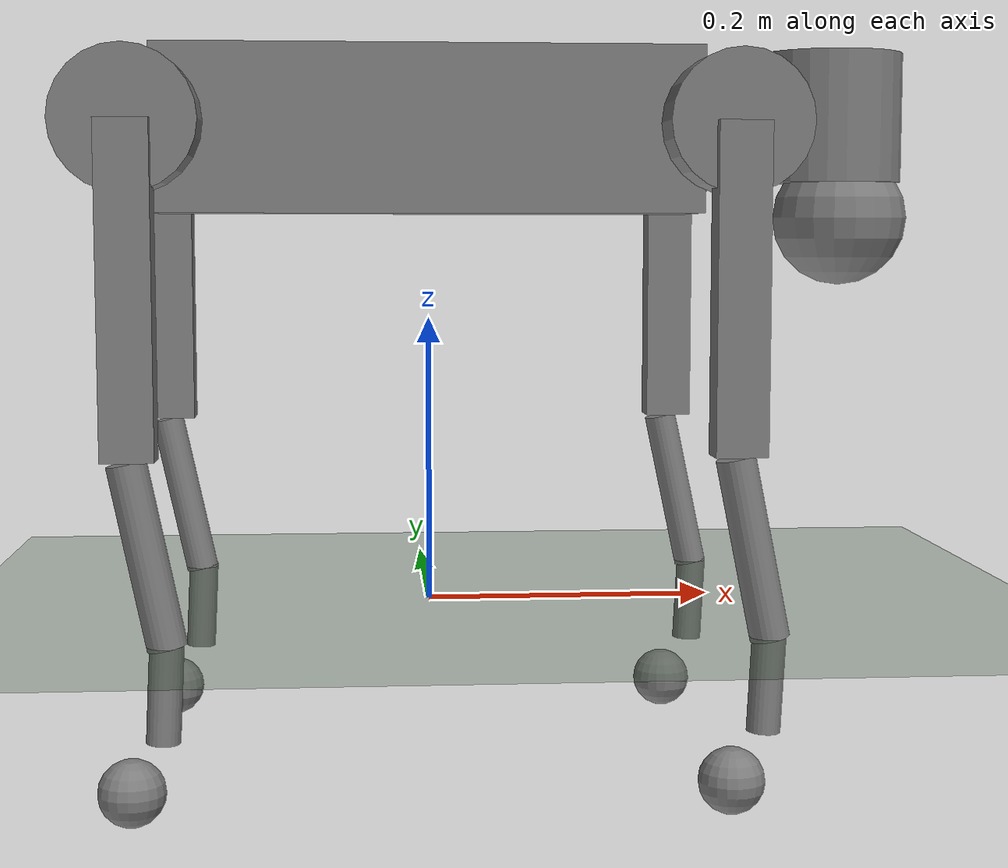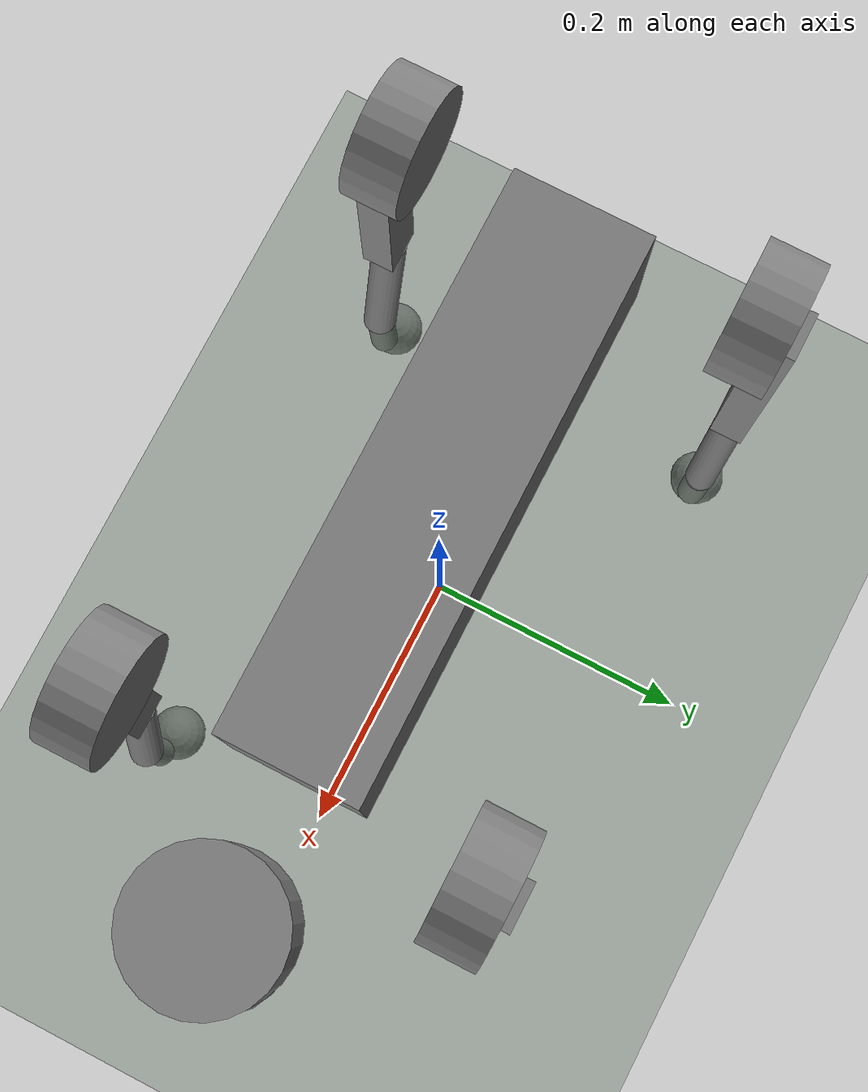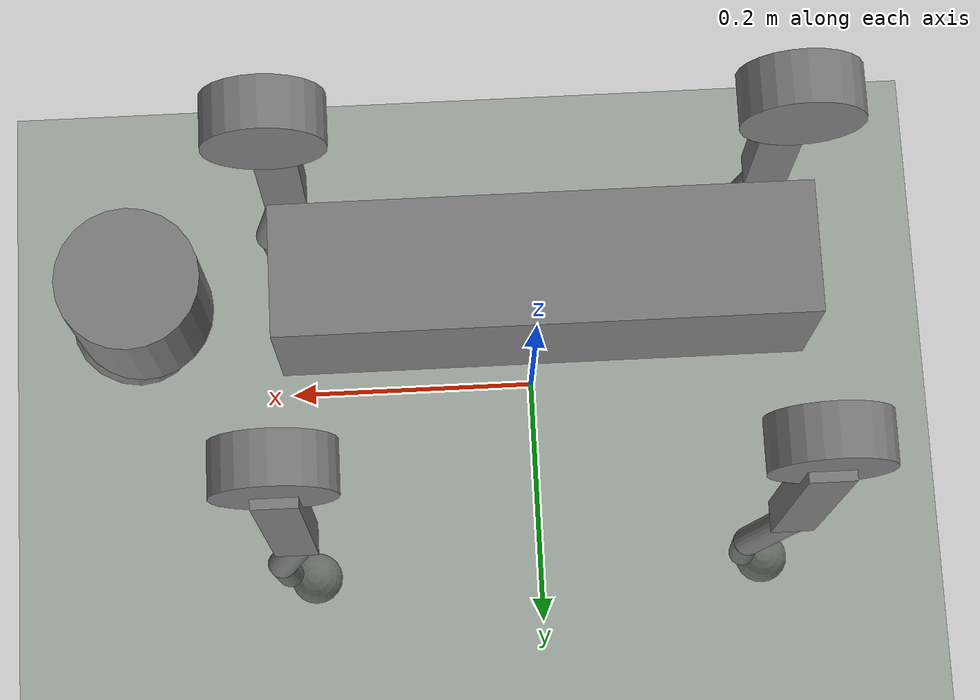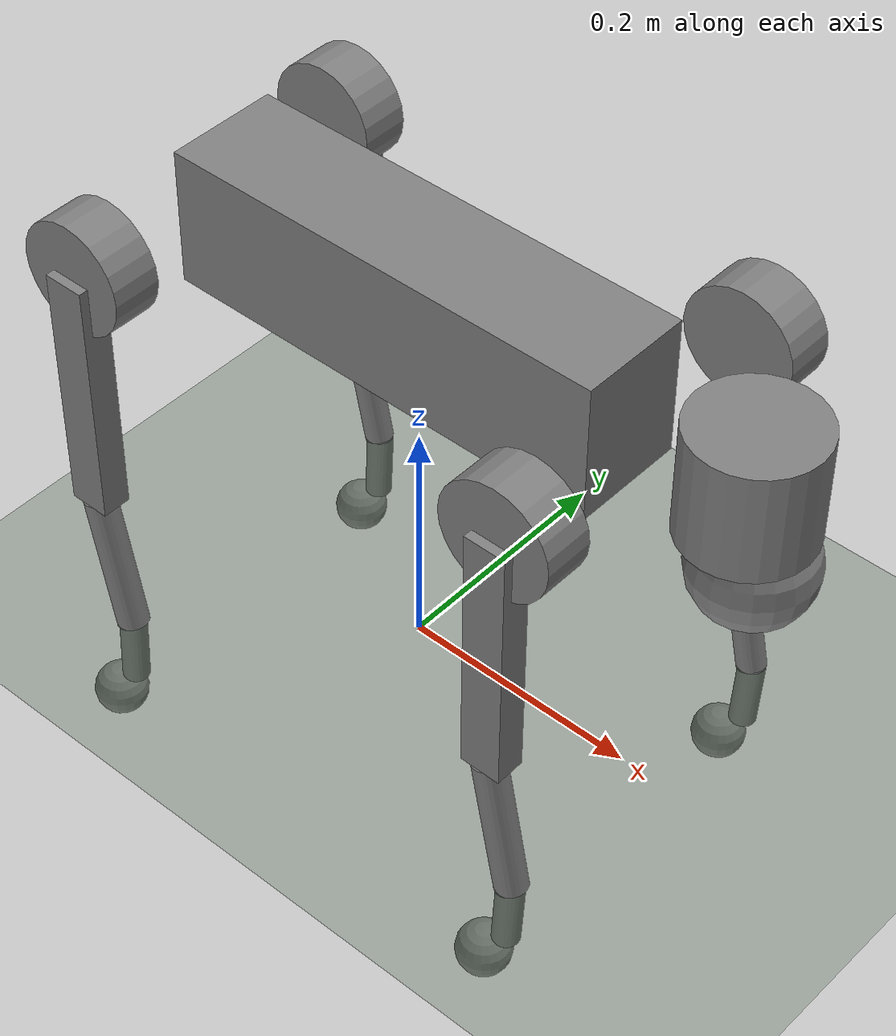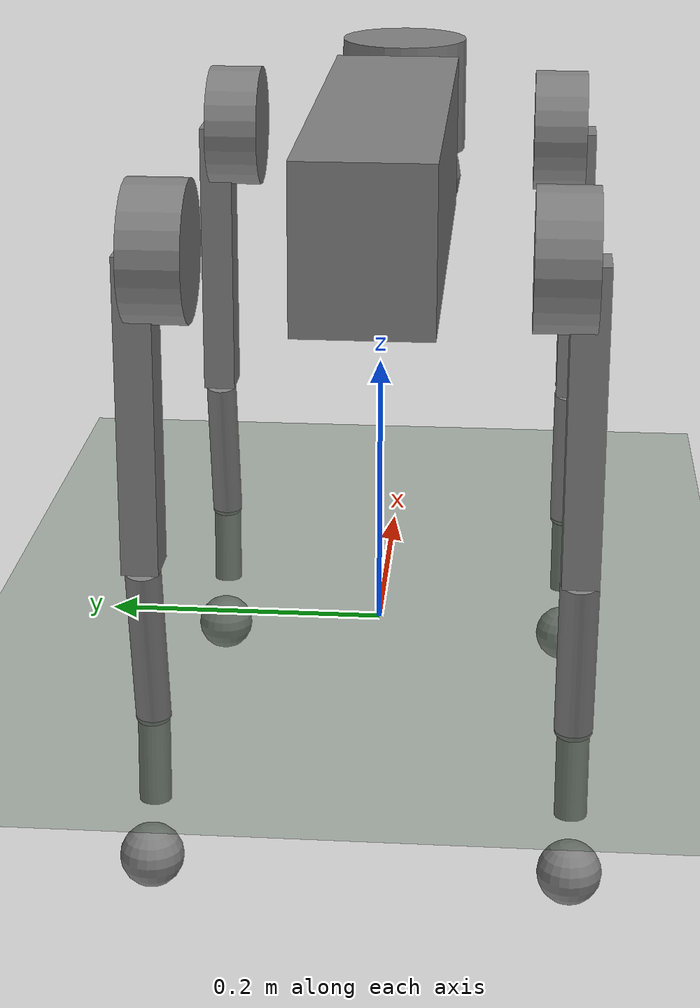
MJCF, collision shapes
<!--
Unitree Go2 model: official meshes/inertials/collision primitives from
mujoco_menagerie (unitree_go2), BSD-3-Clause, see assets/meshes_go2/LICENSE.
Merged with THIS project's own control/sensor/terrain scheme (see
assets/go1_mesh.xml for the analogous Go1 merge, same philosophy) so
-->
<mujoco model="go2_mesh_lidar">
  <compiler angle="radian" meshdir="meshes_go2" autolimits="true"/>
  <option timestep="0.002" iterations="50" solver="Newton" gravity="0 0 -9.81"/>

  <default>
    <default class="go2">
      <geom contype="1" conaffinity="0" condim="3" friction="0.8 0.02 0.01" solref="0.005 1"/>
      <joint damping="0.3" armature="0.01" frictionloss="0.1"/>
      <motor ctrllimited="true"/>
      <default class="hip">
        <joint axis="1 0 0" range="-1.0472 1.0472"/>
        <motor ctrlrange="-23.7 23.7"/>
      </default>
      <default class="thigh_front">
        <joint axis="0 1 0" range="-1.5708 3.4907"/>
        <motor ctrlrange="-23.7 23.7"/>
      </default>
      <default class="thigh_back">
        <joint axis="0 1 0" range="-0.5236 4.5379"/>
        <motor ctrlrange="-23.7 23.7"/>
      </default>
      <default class="calf">
        <joint axis="0 1 0" range="-2.7227 -0.83776"/>
        <motor ctrlrange="-45.43 45.43"/>
      </default>
      <default class="visual">
        <geom type="mesh" contype="0" conaffinity="0" group="2"/>
      </default>
      <default class="collision">
        <geom group="3"/>
      </default>
    </default>
  </default>

  <visual>
    <headlight ambient="0.3 0.3 0.3"/>
    <global offwidth="1280" offheight="720"/>
  </visual>

  <asset>
    <texture type="skybox" builtin="gradient" rgb1="0.5 0.7 0.9" rgb2="0.1 0.1 0.2" width="256" height="256"/>
    <texture name="grid" type="2d" builtin="checker" rgb1="0.2 0.3 0.2" rgb2="0.25 0.35 0.25" width="512" height="512"/>
    <material name="grid_mat" texture="grid" texrepeat="12 12" reflectance="0.1"/>
    <material name="metal" rgba=".9 .95 .95 1"/>
    <material name="black" rgba="0 0 0 1"/>
    <material name="white" rgba="1 1 1 1"/>
    <material name="gray" rgba="0.671705 0.692426 0.774270 1"/>
    <mesh file="base_0.obj"/>
    <mesh file="base_1.obj"/>
    <mesh file="base_2.obj"/>
    <mesh file="base_3.obj"/>
    <mesh file="base_4.obj"/>
    <mesh file="hip_0.obj"/>
    <mesh file="hip_1.obj"/>
    <mesh file="thigh_0.obj"/>
    <mesh file="thigh_1.obj"/>
    <mesh file="thigh_mirror_0.obj"/>
    <mesh file="thigh_mirror_1.obj"/>
    <mesh file="calf_0.obj"/>
    <mesh file="calf_1.obj"/>
    <mesh file="calf_mirror_0.obj"/>
    <mesh file="calf_mirror_1.obj"/>
    <mesh file="foot.obj"/>
  </asset>

  <worldbody>
    <!-- FLAT TERRAIN: single ground plane. Later terrain stages replace/extend this. -->
    <geom name="floor" type="plane" size="20 20 0.1" material="grid_mat" friction="0.9 0.02 0.01" condim="3"/>
    <light name="sun" pos="0 0 4" dir="0 0 -1" directional="true" diffuse="0.8 0.8 0.8"/>

    <body name="trunk" pos="0 0 0.33" childclass="go2">
      <freejoint name="root"/>
      <inertial pos="0.021112 0 -0.005366" quat="-0.000543471 0.713435 -0.00173769 0.700719" mass="6.921"
        diaginertia="0.107027 0.0980771 0.0244531"/>
      <geom class="visual" mesh="base_0" material="black"/>
      <geom class="visual" mesh="base_1" material="black"/>
      <geom class="visual" mesh="base_2" material="black"/>
      <geom class="visual" mesh="base_3" material="white"/>
      <geom class="visual" mesh="base_4" material="gray"/>
      <geom class="collision" type="box" size="0.1881 0.04675 0.057"/>
      <geom class="collision" type="cylinder" size="0.05 0.045" pos="0.285 0 0.01"/>
      <geom class="collision" type="sphere" size="0.047" pos="0.293 0 -0.06"/>
      <site name="imu" pos="0 0 0" size="0.01"/>
      <site name="lidar_t0_y0" pos="0.15 0 0" size="0.008" zaxis="0.875426 -0.234570 -0.422618"/>
      <site name="lidar_t0_y1" pos="0.15 0 0" size="0.008" zaxis="0.906308  0.000000 -0.422618"/>
      <site name="lidar_t0_y2" pos="0.15 0 0" size="0.008" zaxis="0.875426  0.234570 -0.422618"/>
      <site name="lidar_t1_y0" pos="0.15 0 0" size="0.008" zaxis="0.739942 -0.198267 -0.642788"/>
      <site name="lidar_t1_y1" pos="0.15 0 0" size="0.008" zaxis="0.766044  0.000000 -0.642788"/>
      <site name="lidar_t1_y2" pos="0.15 0 0" size="0.008" zaxis="0.739942  0.198267 -0.642788"/>
      <site name="lidar_t2_y0" pos="0.15 0 0" size="0.008" zaxis="0.554032 -0.148453 -0.819152"/>
      <site name="lidar_t2_y1" pos="0.15 0 0" size="0.008" zaxis="0.573576  0.000000 -0.819152"/>
      <site name="lidar_t2_y2" pos="0.15 0 0" size="0.008" zaxis="0.554032  0.148453 -0.819152"/>
      <!-- Chase camera: follows the trunk's center of mass so recordings/viewer
           don't lose the robot as it walks forward. Side-on view, slightly elevated. -->
      <camera name="track" mode="trackcom" pos="0 -2.2 0.7" xyaxes="1 0 0 0 0.35 1"/>
      <camera name="chase_rear" mode="trackcom" pos="-1.8 0 0.5" xyaxes="0 -1 0 0 0 1"/>
      <!-- Top-down: best for footfall/stride-pattern timing (which feet touch when). -->
      <camera name="topdown" mode="trackcom" pos="0 0 3.0" xyaxes="1 0 0 0 1 0"/>

      <!-- ===================== FRONT RIGHT (FR) ===================== -->
      <body name="FR_hip" pos="0.1934 -0.0465 0">
        <joint name="FR_hip_joint" class="hip"/>
        <inertial pos="-0.0054 -0.00194 -0.000105" quat="0.498237 0.505462 0.499245 0.497014" mass="0.678"
          diaginertia="0.00088403 0.000596003 0.000479967"/>
        <geom class="visual" mesh="hip_0" material="metal" quat="4.63268e-05 1 0 0"/>
        <geom class="visual" mesh="hip_1" material="gray" quat="4.63268e-05 1 0 0"/>
        <geom class="collision" type="cylinder" size="0.046 0.02" pos="0 -0.08 0" quat="0.707107 0.707107 0 0"/>
        <body name="FR_thigh" pos="0 -0.0955 0">
          <joint name="FR_thigh_joint" class="thigh_front"/>
          <inertial pos="-0.00374 0.0223 -0.0327" quat="0.551623 -0.0200632 0.0847635 0.829533" mass="1.152"
            diaginertia="0.00594973 0.00584149 0.000878787"/>
          <geom class="visual" mesh="thigh_mirror_0" material="metal"/>
          <geom class="visual" mesh="thigh_mirror_1" material="gray"/>
          <geom class="collision" type="box" size="0.1065 0.01225 0.017" pos="0 0 -0.1065" quat="0.707107 0 0.707107 0"/>
          <body name="FR_calf" pos="0 0 -0.213">
            <joint name="FR_calf_joint" class="calf"/>
            <inertial pos="0.00629595 0.000622121 -0.141417" quat="0.703508 -0.00450087 0.00154099 0.710672"
              mass="0.241352" diaginertia="0.0014901 0.00146356 5.31397e-05"/>
            <geom class="visual" mesh="calf_mirror_0" material="gray"/>
            <geom class="visual" mesh="calf_mirror_1" material="black"/>
            <geom class="collision" type="cylinder" size="0.013 0.06" pos="0.01 0 -0.06" quat="0.995004 0 -0.0998334 0"/>
            <geom class="collision" type="cylinder" size="0.011 0.0325" pos="0.02 0 -0.148" quat="0.999688 0 0.0249974 0"/>
            <geom class="visual" mesh="foot" material="black" pos="0 0 -0.213"/>
            <geom name="FR_foot" class="collision" type="sphere" pos="-0.002 0 -0.213" size="0.022" friction="1.0 0.02 0.01" priority="1"/>
            <site name="FR_foot_site" pos="-0.002 0 -0.213" size="0.01"/>
          </body>
        </body>
      </body>

      <!-- ===================== FRONT LEFT (FL) ===================== -->
      <body name="FL_hip" pos="0.1934 0.0465 0">
        <joint name="FL_hip_joint" class="hip"/>
        <inertial pos="-0.0054 0.00194 -0.000105" quat="0.497014 0.499245 0.505462 0.498237" mass="0.678"
          diaginertia="0.00088403 0.000596003 0.000479967"/>
        <geom class="visual" mesh="hip_0" material="metal"/>
        <geom class="visual" mesh="hip_1" material="gray"/>
        <geom class="collision" type="cylinder" size="0.046 0.02" pos="0 0.08 0" quat="1 1 0 0"/>
        <body name="FL_thigh" pos="0 0.0955 0">
          <joint name="FL_thigh_joint" class="thigh_front"/>
          <inertial pos="-0.00374 -0.0223 -0.0327" quat="0.829533 0.0847635 -0.0200632 0.551623" mass="1.152"
            diaginertia="0.00594973 0.00584149 0.000878787"/>
          <geom class="visual" mesh="thigh_0" material="metal"/>
          <geom class="visual" mesh="thigh_1" material="gray"/>
          <geom class="collision" type="box" size="0.1065 0.01225 0.017" pos="0 0 -0.1065" quat="0.707107 0 0.707107 0"/>
          <body name="FL_calf" pos="0 0 -0.213">
            <joint name="FL_calf_joint" class="calf"/>
            <inertial pos="0.00629595 -0.000622121 -0.141417" quat="0.710672 0.00154099 -0.00450087 0.703508"
              mass="0.241352" diaginertia="0.0014901 0.00146356 5.31397e-05"/>
            <geom class="visual" mesh="calf_0" material="gray"/>
            <geom class="visual" mesh="calf_1" material="black"/>
            <geom class="collision" type="cylinder" size="0.012 0.06" pos="0.008 0 -0.06" quat="0.994493 0 -0.104807 0"/>
            <geom class="collision" type="cylinder" size="0.011 0.0325" pos="0.02 0 -0.148" quat="0.999688 0 0.0249974 0"/>
            <geom class="visual" mesh="foot" material="black" pos="0 0 -0.213"/>
            <geom name="FL_foot" class="collision" type="sphere" pos="-0.002 0 -0.213" size="0.022" friction="1.0 0.02 0.01" priority="1"/>
            <site name="FL_foot_site" pos="-0.002 0 -0.213" size="0.01"/>
          </body>
        </body>
      </body>

      <!-- ===================== REAR RIGHT (RR) ===================== -->
      <body name="RR_hip" pos="-0.1934 -0.0465 0">
        <joint name="RR_hip_joint" class="hip"/>
        <inertial pos="0.0054 -0.00194 -0.000105" quat="0.499245 0.497014 0.498237 0.505462" mass="0.678"
          diaginertia="0.00088403 0.000596003 0.000479967"/>
        <geom class="visual" mesh="hip_0" material="metal" quat="2.14617e-09 4.63268e-05 4.63268e-05 -1"/>
        <geom class="visual" mesh="hip_1" material="gray" quat="2.14617e-09 4.63268e-05 4.63268e-05 -1"/>
        <geom class="collision" type="cylinder" size="0.046 0.02" pos="0 -0.08 0" quat="0.707107 0.707107 0 0"/>
        <body name="RR_thigh" pos="0 -0.0955 0">
          <joint name="RR_thigh_joint" class="thigh_back"/>
          <inertial pos="-0.00374 0.0223 -0.0327" quat="0.551623 -0.0200632 0.0847635 0.829533" mass="1.152"
            diaginertia="0.00594973 0.00584149 0.000878787"/>
          <geom class="visual" mesh="thigh_mirror_0" material="metal"/>
          <geom class="visual" mesh="thigh_mirror_1" material="gray"/>
          <geom class="collision" type="box" size="0.1065 0.01225 0.017" pos="0 0 -0.1065" quat="0.707107 0 0.707107 0"/>
          <body name="RR_calf" pos="0 0 -0.213">
            <joint name="RR_calf_joint" class="calf"/>
            <inertial pos="0.00629595 0.000622121 -0.141417" quat="0.703508 -0.00450087 0.00154099 0.710672"
              mass="0.241352" diaginertia="0.0014901 0.00146356 5.31397e-05"/>
            <geom class="visual" mesh="calf_mirror_0" material="gray"/>
            <geom class="visual" mesh="calf_mirror_1" material="black"/>
            <geom class="collision" type="cylinder" size="0.013 0.06" pos="0.01 0 -0.06" quat="0.995004 0 -0.0998334 0"/>
            <geom class="collision" type="cylinder" size="0.011 0.0325" pos="0.02 0 -0.148" quat="0.999688 0 0.0249974 0"/>
            <geom class="visual" mesh="foot" material="black" pos="0 0 -0.213"/>
            <geom name="RR_foot" class="collision" type="sphere" pos="-0.002 0 -0.213" size="0.022" friction="1.0 0.02 0.01" priority="1"/>
            <site name="RR_foot_site" pos="-0.002 0 -0.213" size="0.01"/>
          </body>
        </body>
      </body>

      <!-- ===================== REAR LEFT (RL) ===================== -->
      <body name="RL_hip" pos="-0.1934 0.0465 0">
        <joint name="RL_hip_joint" class="hip"/>
        <inertial pos="0.0054 0.00194 -0.000105" quat="0.505462 0.498237 0.497014 0.499245" mass="0.678"
          diaginertia="0.00088403 0.000596003 0.000479967"/>
        <geom class="visual" mesh="hip_0" material="metal" quat="4.63268e-05 0 1 0"/>
        <geom class="visual" mesh="hip_1" material="gray" quat="4.63268e-05 0 1 0"/>
        <geom class="collision" type="cylinder" size="0.046 0.02" pos="0 0.08 0" quat="0.707107 0.707107 0 0"/>
        <body name="RL_thigh" pos="0 0.0955 0">
          <joint name="RL_thigh_joint" class="thigh_back"/>
          <inertial pos="-0.00374 -0.0223 -0.0327" quat="0.829533 0.0847635 -0.0200632 0.551623" mass="1.152"
            diaginertia="0.00594973 0.00584149 0.000878787"/>
          <geom class="visual" mesh="thigh_0" material="metal"/>
          <geom class="visual" mesh="thigh_1" material="gray"/>
          <geom class="collision" type="box" size="0.1065 0.01225 0.017" pos="0 0 -0.1065" quat="0.707107 0 0.707107 0"/>
          <body name="RL_calf" pos="0 0 -0.213">
            <joint name="RL_calf_joint" class="calf"/>
            <inertial pos="0.00629595 -0.000622121 -0.141417" quat="0.710672 0.00154099 -0.00450087 0.703508"
              mass="0.241352" diaginertia="0.0014901 0.00146356 5.31397e-05"/>
            <geom class="visual" mesh="calf_0" material="gray"/>
            <geom class="visual" mesh="calf_1" material="black"/>
            <geom class="collision" type="cylinder" size="0.012 0.06" pos="0.008 0 -0.06" quat="0.994493 0 -0.104807 0"/>
            <geom class="collision" type="cylinder" size="0.011 0.0325" pos="0.02 0 -0.148" quat="0.999688 0 0.0249974 0"/>
            <geom class="visual" mesh="foot" material="black" pos="0 0 -0.213"/>
            <geom name="RL_foot" class="collision" type="sphere" pos="-0.002 0 -0.213" size="0.022" friction="1.0 0.02 0.01" priority="1"/>
            <site name="RL_foot_site" pos="-0.002 0 -0.213" size="0.01"/>
          </body>
        </body>
      </body>
    </body>
  </worldbody>

  <actuator>
    <motor name="FR_hip"   joint="FR_hip_joint"   class="hip"/>
    <motor name="FR_thigh" joint="FR_thigh_joint" class="thigh_front"/>
    <motor name="FR_calf"  joint="FR_calf_joint"  class="calf"/>
    <motor name="FL_hip"   joint="FL_hip_joint"   class="hip"/>
    <motor name="FL_thigh" joint="FL_thigh_joint" class="thigh_front"/>
    <motor name="FL_calf"  joint="FL_calf_joint"  class="calf"/>
    <motor name="RR_hip"   joint="RR_hip_joint"   class="hip"/>
    <motor name="RR_thigh" joint="RR_thigh_joint" class="thigh_back"/>
    <motor name="RR_calf"  joint="RR_calf_joint"  class="calf"/>
    <motor name="RL_hip"   joint="RL_hip_joint"   class="hip"/>
    <motor name="RL_thigh" joint="RL_thigh_joint" class="thigh_back"/>
    <motor name="RL_calf"  joint="RL_calf_joint"  class="calf"/>
  </actuator>

  <sensor>
    <framequat name="orientation" objtype="site" objname="imu"/>
    <gyro name="angular_velocity" site="imu"/>
    <accelerometer name="linear_acceleration" site="imu"/>
    <framepos name="trunk_pos" objtype="site" objname="imu"/>
    <framelinvel name="trunk_linvel" objtype="site" objname="imu"/>
    <touch name="FR_touch" site="FR_foot_site"/>
    <touch name="FL_touch" site="FL_foot_site"/>
    <touch name="RR_touch" site="RR_foot_site"/>
    <touch name="RL_touch" site="RL_foot_site"/>
    <rangefinder name="lidar_t0_y0" site="lidar_t0_y0"/>
    <rangefinder name="lidar_t0_y1" site="lidar_t0_y1"/>
    <rangefinder name="lidar_t0_y2" site="lidar_t0_y2"/>
    <rangefinder name="lidar_t1_y0" site="lidar_t1_y0"/>
    <rangefinder name="lidar_t1_y1" site="lidar_t1_y1"/>
    <rangefinder name="lidar_t1_y2" site="lidar_t1_y2"/>
    <rangefinder name="lidar_t2_y0" site="lidar_t2_y0"/>
    <rangefinder name="lidar_t2_y1" site="lidar_t2_y1"/>
    <rangefinder name="lidar_t2_y2" site="lidar_t2_y2"/>
  </sensor>

  <keyframe>
    <key name="stand"
      qpos="0 0 0.35 1 0 0 0
            0 0.6 -1.2
            0 0.6 -1.2
            0 0.6 -1.2
            0 0.6 -1.2"/>
  </keyframe>
</mujoco>
